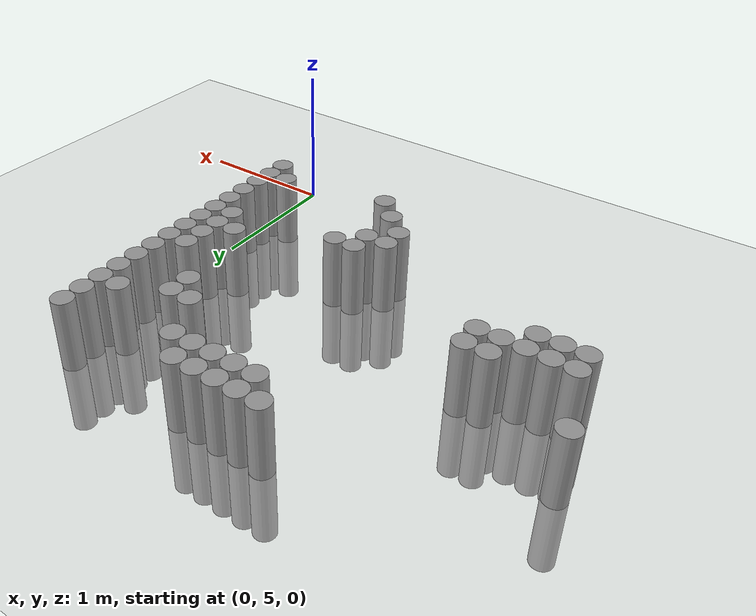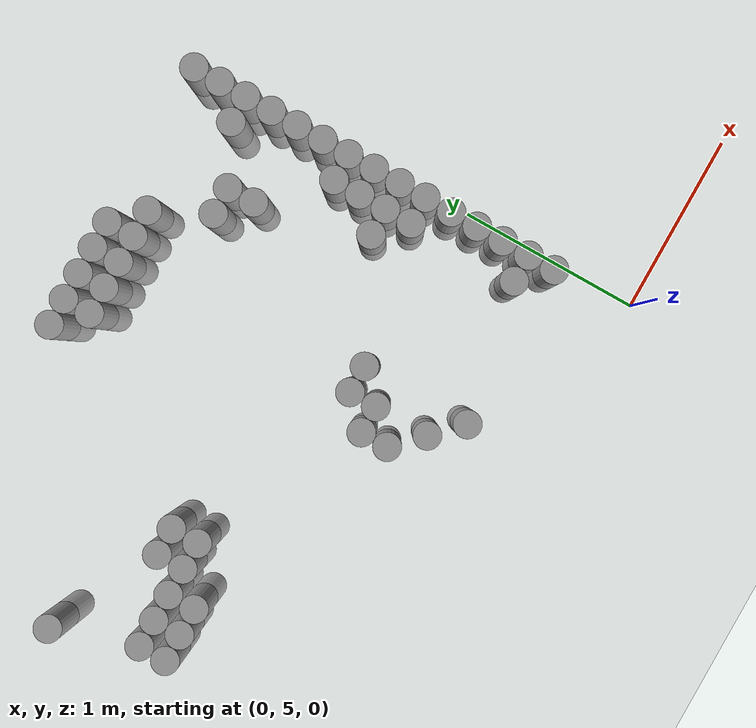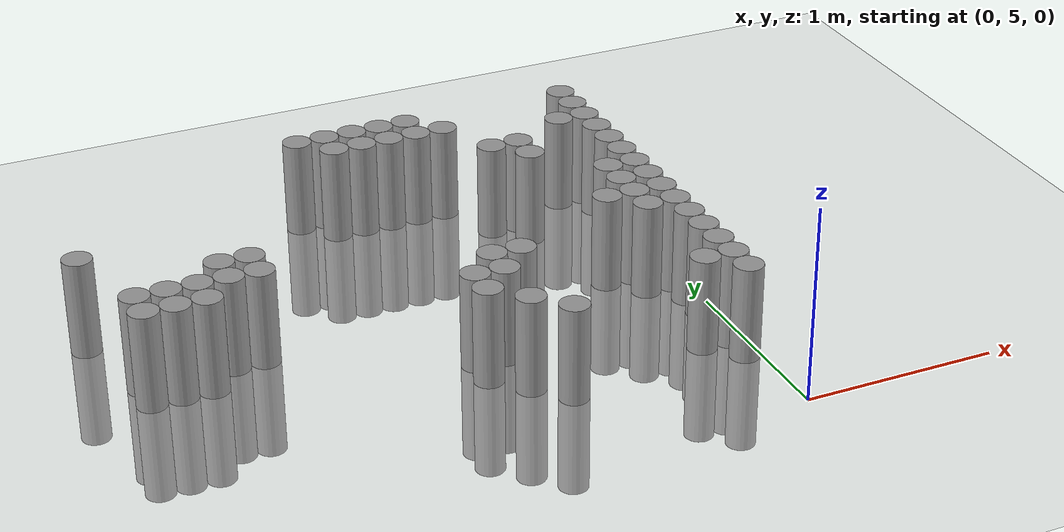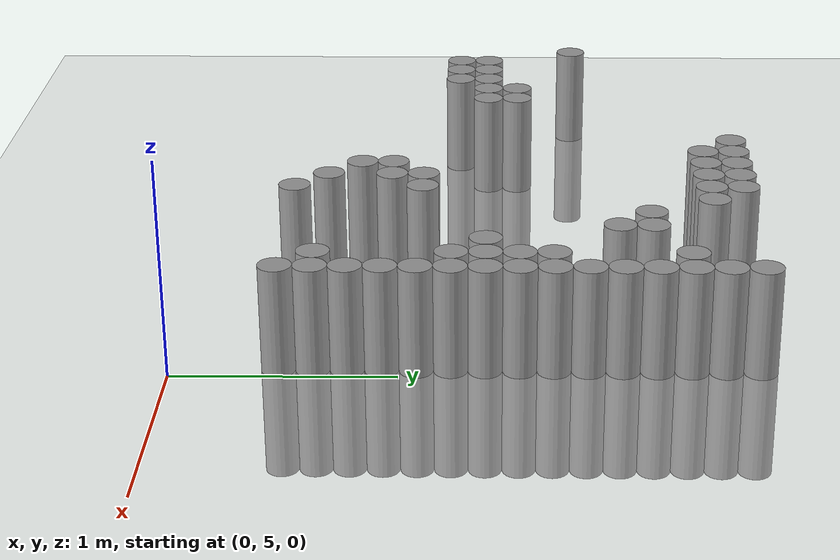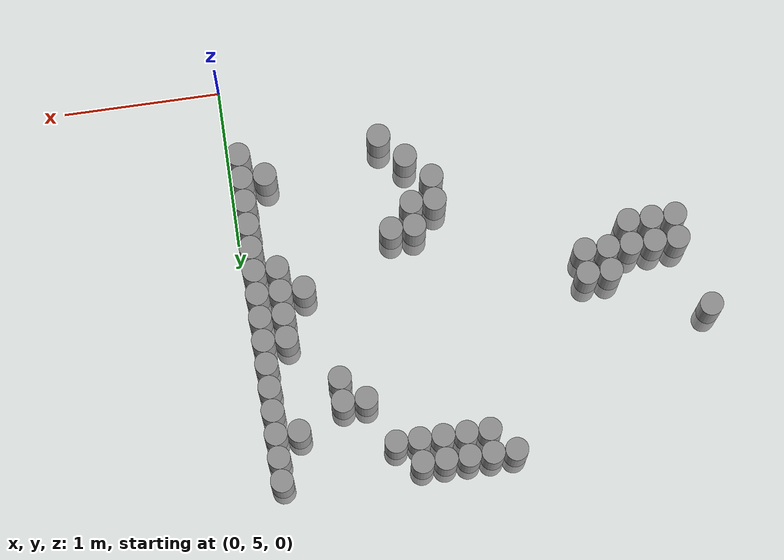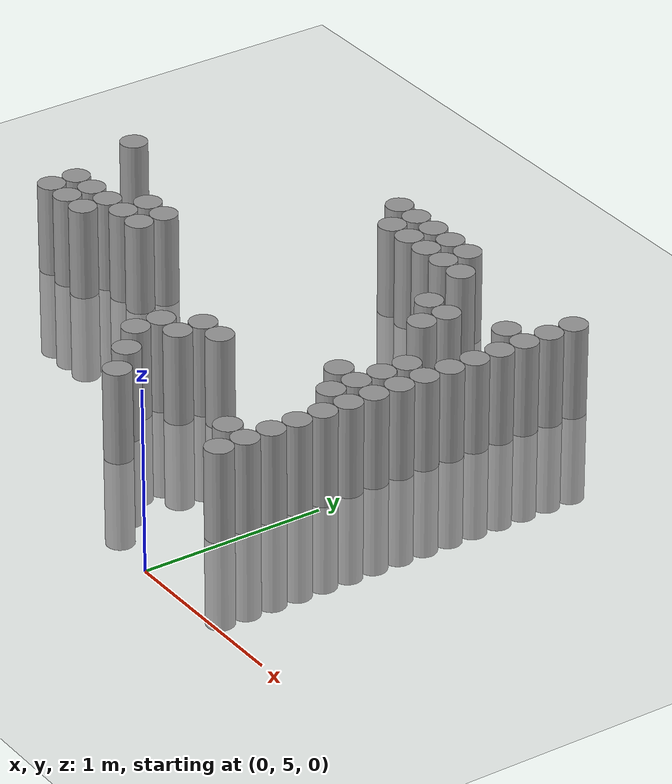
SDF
<sdf version="1.6">
 <world name="default">
  <model name="ground_plane">
   <static>1</static>
   <link name="link">
    <collision name="collision">
     <geometry><plane><normal>0 0 1</normal><size>100 100</size></plane></geometry>
     <surface><friction><ode><mu>100</mu><mu2>50</mu2></ode></friction></surface>
    </collision>
    <visual name="visual">
     <cast_shadows>0</cast_shadows>
     <geometry><plane><normal>0 0 1</normal><size>100 100</size></plane></geometry>
     <material>
      <script><uri>file://media/materials/scripts/gazebo.material</uri><name>Gazebo/Grey</name></script>
     </material>
    </visual>
   </link>
  </model>
  <model name="unit_cylinder_152">
   <pose>-2.925000 6.825000 0.000000 0.000000 0.000000 0.000000</pose>
   <link name="link">
    <inertial>
     <mass>1</mass>
     <inertia><ixx>0.145833</ixx><ixy>0</ixy><ixz>0</ixz><iyy>0.145833</iyy><iyz>0</iyz><izz>0.125</izz></inertia>
    </inertial>
    <collision name="collision">
     <geometry><cylinder><radius>0.075000</radius><length>1</length></cylinder></geometry>
    </collision>
    <visual name="visual">
     <geometry><cylinder><radius>0.075000</radius><length>1</length></cylinder></geometry>
     <material>
      <script><name>Gazebo/Grey</name><uri>file://media/materials/scripts/gazebo.material</uri></script>
     </material>
    </visual>
   </link>
  </model>
  <model name="unit_cylinder_156">
   <pose>-2.775000 6.225000 0.000000 0.000000 0.000000 0.000000</pose>
   <link name="link">
    <inertial>
     <mass>1</mass>
     <inertia><ixx>0.145833</ixx><ixy>0</ixy><ixz>0</ixz><iyy>0.145833</iyy><iyz>0</iyz><izz>0.125</izz></inertia>
    </inertial>
    <collision name="collision">
     <geometry><cylinder><radius>0.075000</radius><length>1</length></cylinder></geometry>
    </collision>
    <visual name="visual">
     <geometry><cylinder><radius>0.075000</radius><length>1</length></cylinder></geometry>
     <material>
      <script><name>Gazebo/Grey</name><uri>file://media/materials/scripts/gazebo.material</uri></script>
     </material>
    </visual>
   </link>
  </model>
  <model name="unit_cylinder_157">
   <pose>-2.775000 6.375000 0.000000 0.000000 0.000000 0.000000</pose>
   <link name="link">
    <inertial>
     <mass>1</mass>
     <inertia><ixx>0.145833</ixx><ixy>0</ixy><ixz>0</ixz><iyy>0.145833</iyy><iyz>0</iyz><izz>0.125</izz></inertia>
    </inertial>
    <collision name="collision">
     <geometry><cylinder><radius>0.075000</radius><length>1</length></cylinder></geometry>
    </collision>
    <visual name="visual">
     <geometry><cylinder><radius>0.075000</radius><length>1</length></cylinder></geometry>
     <material>
      <script><name>Gazebo/Grey</name><uri>file://media/materials/scripts/gazebo.material</uri></script>
     </material>
    </visual>
   </link>
  </model>
  <model name="unit_cylinder_164">
   <pose>-2.625000 6.225000 0.000000 0.000000 0.000000 0.000000</pose>
   <link name="link">
    <inertial>
     <mass>1</mass>
     <inertia><ixx>0.145833</ixx><ixy>0</ixy><ixz>0</ixz><iyy>0.145833</iyy><iyz>0</iyz><izz>0.125</izz></inertia>
    </inertial>
    <collision name="collision">
     <geometry><cylinder><radius>0.075000</radius><length>1</length></cylinder></geometry>
    </collision>
    <visual name="visual">
     <geometry><cylinder><radius>0.075000</radius><length>1</length></cylinder></geometry>
     <material>
      <script><name>Gazebo/Grey</name><uri>file://media/materials/scripts/gazebo.material</uri></script>
     </material>
    </visual>
   </link>
  </model>
  <model name="unit_cylinder_165">
   <pose>-2.625000 6.375000 0.000000 0.000000 0.000000 0.000000</pose>
   <link name="link">
    <inertial>
     <mass>1</mass>
     <inertia><ixx>0.145833</ixx><ixy>0</ixy><ixz>0</ixz><iyy>0.145833</iyy><iyz>0</iyz><izz>0.125</izz></inertia>
    </inertial>
    <collision name="collision">
     <geometry><cylinder><radius>0.075000</radius><length>1</length></cylinder></geometry>
    </collision>
    <visual name="visual">
     <geometry><cylinder><radius>0.075000</radius><length>1</length></cylinder></geometry>
     <material>
      <script><name>Gazebo/Grey</name><uri>file://media/materials/scripts/gazebo.material</uri></script>
     </material>
    </visual>
   </link>
  </model>
  <model name="unit_cylinder_171">
   <pose>-2.475000 6.225000 0.000000 0.000000 0.000000 0.000000</pose>
   <link name="link">
    <inertial>
     <mass>1</mass>
     <inertia><ixx>0.145833</ixx><ixy>0</ixy><ixz>0</ixz><iyy>0.145833</iyy><iyz>0</iyz><izz>0.125</izz></inertia>
    </inertial>
    <collision name="collision">
     <geometry><cylinder><radius>0.075000</radius><length>1</length></cylinder></geometry>
    </collision>
    <visual name="visual">
     <geometry><cylinder><radius>0.075000</radius><length>1</length></cylinder></geometry>
     <material>
      <script><name>Gazebo/Grey</name><uri>file://media/materials/scripts/gazebo.material</uri></script>
     </material>
    </visual>
   </link>
  </model>
  <model name="unit_cylinder_172">
   <pose>-2.475000 6.375000 0.000000 0.000000 0.000000 0.000000</pose>
   <link name="link">
    <inertial>
     <mass>1</mass>
     <inertia><ixx>0.145833</ixx><ixy>0</ixy><ixz>0</ixz><iyy>0.145833</iyy><iyz>0</iyz><izz>0.125</izz></inertia>
    </inertial>
    <collision name="collision">
     <geometry><cylinder><radius>0.075000</radius><length>1</length></cylinder></geometry>
    </collision>
    <visual name="visual">
     <geometry><cylinder><radius>0.075000</radius><length>1</length></cylinder></geometry>
     <material>
      <script><name>Gazebo/Grey</name><uri>file://media/materials/scripts/gazebo.material</uri></script>
     </material>
    </visual>
   </link>
  </model>
  <model name="unit_cylinder_175">
   <pose>-2.325000 6.375000 0.000000 0.000000 0.000000 0.000000</pose>
   <link name="link">
    <inertial>
     <mass>1</mass>
     <inertia><ixx>0.145833</ixx><ixy>0</ixy><ixz>0</ixz><iyy>0.145833</iyy><iyz>0</iyz><izz>0.125</izz></inertia>
    </inertial>
    <collision name="collision">
     <geometry><cylinder><radius>0.075000</radius><length>1</length></cylinder></geometry>
    </collision>
    <visual name="visual">
     <geometry><cylinder><radius>0.075000</radius><length>1</length></cylinder></geometry>
     <material>
      <script><name>Gazebo/Grey</name><uri>file://media/materials/scripts/gazebo.material</uri></script>
     </material>
    </visual>
   </link>
  </model>
  <model name="unit_cylinder_176">
   <pose>-2.325000 6.525000 0.000000 0.000000 0.000000 0.000000</pose>
   <link name="link">
    <inertial>
     <mass>1</mass>
     <inertia><ixx>0.145833</ixx><ixy>0</ixy><ixz>0</ixz><iyy>0.145833</iyy><iyz>0</iyz><izz>0.125</izz></inertia>
    </inertial>
    <collision name="collision">
     <geometry><cylinder><radius>0.075000</radius><length>1</length></cylinder></geometry>
    </collision>
    <visual name="visual">
     <geometry><cylinder><radius>0.075000</radius><length>1</length></cylinder></geometry>
     <material>
      <script><name>Gazebo/Grey</name><uri>file://media/materials/scripts/gazebo.material</uri></script>
     </material>
    </visual>
   </link>
  </model>
  <model name="unit_cylinder_177">
   <pose>-2.175000 6.375000 0.000000 0.000000 0.000000 0.000000</pose>
   <link name="link">
    <inertial>
     <mass>1</mass>
     <inertia><ixx>0.145833</ixx><ixy>0</ixy><ixz>0</ixz><iyy>0.145833</iyy><iyz>0</iyz><izz>0.125</izz></inertia>
    </inertial>
    <collision name="collision">
     <geometry><cylinder><radius>0.075000</radius><length>1</length></cylinder></geometry>
    </collision>
    <visual name="visual">
     <geometry><cylinder><radius>0.075000</radius><length>1</length></cylinder></geometry>
     <material>
      <script><name>Gazebo/Grey</name><uri>file://media/materials/scripts/gazebo.material</uri></script>
     </material>
    </visual>
   </link>
  </model>
  <model name="unit_cylinder_178">
   <pose>-2.175000 6.525000 0.000000 0.000000 0.000000 0.000000</pose>
   <link name="link">
    <inertial>
     <mass>1</mass>
     <inertia><ixx>0.145833</ixx><ixy>0</ixy><ixz>0</ixz><iyy>0.145833</iyy><iyz>0</iyz><izz>0.125</izz></inertia>
    </inertial>
    <collision name="collision">
     <geometry><cylinder><radius>0.075000</radius><length>1</length></cylinder></geometry>
    </collision>
    <visual name="visual">
     <geometry><cylinder><radius>0.075000</radius><length>1</length></cylinder></geometry>
     <material>
      <script><name>Gazebo/Grey</name><uri>file://media/materials/scripts/gazebo.material</uri></script>
     </material>
    </visual>
   </link>
  </model>
  <model name="unit_cylinder_186">
   <pose>-1.575000 7.575000 0.000000 0.000000 0.000000 0.000000</pose>
   <link name="link">
    <inertial>
     <mass>1</mass>
     <inertia><ixx>0.145833</ixx><ixy>0</ixy><ixz>0</ixz><iyy>0.145833</iyy><iyz>0</iyz><izz>0.125</izz></inertia>
    </inertial>
    <collision name="collision">
     <geometry><cylinder><radius>0.075000</radius><length>1</length></cylinder></geometry>
    </collision>
    <visual name="visual">
     <geometry><cylinder><radius>0.075000</radius><length>1</length></cylinder></geometry>
     <material>
      <script><name>Gazebo/Grey</name><uri>file://media/materials/scripts/gazebo.material</uri></script>
     </material>
    </visual>
   </link>
  </model>
  <model name="unit_cylinder_191">
   <pose>-1.425000 7.425000 0.000000 0.000000 0.000000 0.000000</pose>
   <link name="link">
    <inertial>
     <mass>1</mass>
     <inertia><ixx>0.145833</ixx><ixy>0</ixy><ixz>0</ixz><iyy>0.145833</iyy><iyz>0</iyz><izz>0.125</izz></inertia>
    </inertial>
    <collision name="collision">
     <geometry><cylinder><radius>0.075000</radius><length>1</length></cylinder></geometry>
    </collision>
    <visual name="visual">
     <geometry><cylinder><radius>0.075000</radius><length>1</length></cylinder></geometry>
     <material>
      <script><name>Gazebo/Grey</name><uri>file://media/materials/scripts/gazebo.material</uri></script>
     </material>
    </visual>
   </link>
  </model>
  <model name="unit_cylinder_192">
   <pose>-1.425000 7.575000 0.000000 0.000000 0.000000 0.000000</pose>
   <link name="link">
    <inertial>
     <mass>1</mass>
     <inertia><ixx>0.145833</ixx><ixy>0</ixy><ixz>0</ixz><iyy>0.145833</iyy><iyz>0</iyz><izz>0.125</izz></inertia>
    </inertial>
    <collision name="collision">
     <geometry><cylinder><radius>0.075000</radius><length>1</length></cylinder></geometry>
    </collision>
    <visual name="visual">
     <geometry><cylinder><radius>0.075000</radius><length>1</length></cylinder></geometry>
     <material>
      <script><name>Gazebo/Grey</name><uri>file://media/materials/scripts/gazebo.material</uri></script>
     </material>
    </visual>
   </link>
  </model>
  <model name="unit_cylinder_194">
   <pose>-1.275000 5.775000 0.000000 0.000000 0.000000 0.000000</pose>
   <link name="link">
    <inertial>
     <mass>1</mass>
     <inertia><ixx>0.145833</ixx><ixy>0</ixy><ixz>0</ixz><iyy>0.145833</iyy><iyz>0</iyz><izz>0.125</izz></inertia>
    </inertial>
    <collision name="collision">
     <geometry><cylinder><radius>0.075000</radius><length>1</length></cylinder></geometry>
    </collision>
    <visual name="visual">
     <geometry><cylinder><radius>0.075000</radius><length>1</length></cylinder></geometry>
     <material>
      <script><name>Gazebo/Grey</name><uri>file://media/materials/scripts/gazebo.material</uri></script>
     </material>
    </visual>
   </link>
  </model>
  <model name="unit_cylinder_195">
   <pose>-1.275000 5.925000 0.000000 0.000000 0.000000 0.000000</pose>
   <link name="link">
    <inertial>
     <mass>1</mass>
     <inertia><ixx>0.145833</ixx><ixy>0</ixy><ixz>0</ixz><iyy>0.145833</iyy><iyz>0</iyz><izz>0.125</izz></inertia>
    </inertial>
    <collision name="collision">
     <geometry><cylinder><radius>0.075000</radius><length>1</length></cylinder></geometry>
    </collision>
    <visual name="visual">
     <geometry><cylinder><radius>0.075000</radius><length>1</length></cylinder></geometry>
     <material>
      <script><name>Gazebo/Grey</name><uri>file://media/materials/scripts/gazebo.material</uri></script>
     </material>
    </visual>
   </link>
  </model>
  <model name="unit_cylinder_196">
   <pose>-1.275000 7.425000 0.000000 0.000000 0.000000 0.000000</pose>
   <link name="link">
    <inertial>
     <mass>1</mass>
     <inertia><ixx>0.145833</ixx><ixy>0</ixy><ixz>0</ixz><iyy>0.145833</iyy><iyz>0</iyz><izz>0.125</izz></inertia>
    </inertial>
    <collision name="collision">
     <geometry><cylinder><radius>0.075000</radius><length>1</length></cylinder></geometry>
    </collision>
    <visual name="visual">
     <geometry><cylinder><radius>0.075000</radius><length>1</length></cylinder></geometry>
     <material>
      <script><name>Gazebo/Grey</name><uri>file://media/materials/scripts/gazebo.material</uri></script>
     </material>
    </visual>
   </link>
  </model>
  <model name="unit_cylinder_197">
   <pose>-1.275000 7.575000 0.000000 0.000000 0.000000 0.000000</pose>
   <link name="link">
    <inertial>
     <mass>1</mass>
     <inertia><ixx>0.145833</ixx><ixy>0</ixy><ixz>0</ixz><iyy>0.145833</iyy><iyz>0</iyz><izz>0.125</izz></inertia>
    </inertial>
    <collision name="collision">
     <geometry><cylinder><radius>0.075000</radius><length>1</length></cylinder></geometry>
    </collision>
    <visual name="visual">
     <geometry><cylinder><radius>0.075000</radius><length>1</length></cylinder></geometry>
     <material>
      <script><name>Gazebo/Grey</name><uri>file://media/materials/scripts/gazebo.material</uri></script>
     </material>
    </visual>
   </link>
  </model>
  <model name="unit_cylinder_201">
   <pose>-1.125000 5.625000 0.000000 0.000000 0.000000 0.000000</pose>
   <link name="link">
    <inertial>
     <mass>1</mass>
     <inertia><ixx>0.145833</ixx><ixy>0</ixy><ixz>0</ixz><iyy>0.145833</iyy><iyz>0</iyz><izz>0.125</izz></inertia>
    </inertial>
    <collision name="collision">
     <geometry><cylinder><radius>0.075000</radius><length>1</length></cylinder></geometry>
    </collision>
    <visual name="visual">
     <geometry><cylinder><radius>0.075000</radius><length>1</length></cylinder></geometry>
     <material>
      <script><name>Gazebo/Grey</name><uri>file://media/materials/scripts/gazebo.material</uri></script>
     </material>
    </visual>
   </link>
  </model>
  <model name="unit_cylinder_202">
   <pose>-1.125000 5.925000 0.000000 0.000000 0.000000 0.000000</pose>
   <link name="link">
    <inertial>
     <mass>1</mass>
     <inertia><ixx>0.145833</ixx><ixy>0</ixy><ixz>0</ixz><iyy>0.145833</iyy><iyz>0</iyz><izz>0.125</izz></inertia>
    </inertial>
    <collision name="collision">
     <geometry><cylinder><radius>0.075000</radius><length>1</length></cylinder></geometry>
    </collision>
    <visual name="visual">
     <geometry><cylinder><radius>0.075000</radius><length>1</length></cylinder></geometry>
     <material>
      <script><name>Gazebo/Grey</name><uri>file://media/materials/scripts/gazebo.material</uri></script>
     </material>
    </visual>
   </link>
  </model>
  <model name="unit_cylinder_203">
   <pose>-1.125000 6.075000 0.000000 0.000000 0.000000 0.000000</pose>
   <link name="link">
    <inertial>
     <mass>1</mass>
     <inertia><ixx>0.145833</ixx><ixy>0</ixy><ixz>0</ixz><iyy>0.145833</iyy><iyz>0</iyz><izz>0.125</izz></inertia>
    </inertial>
    <collision name="collision">
     <geometry><cylinder><radius>0.075000</radius><length>1</length></cylinder></geometry>
    </collision>
    <visual name="visual">
     <geometry><cylinder><radius>0.075000</radius><length>1</length></cylinder></geometry>
     <material>
      <script><name>Gazebo/Grey</name><uri>file://media/materials/scripts/gazebo.material</uri></script>
     </material>
    </visual>
   </link>
  </model>
  <model name="unit_cylinder_204">
   <pose>-1.125000 7.425000 0.000000 0.000000 0.000000 0.000000</pose>
   <link name="link">
    <inertial>
     <mass>1</mass>
     <inertia><ixx>0.145833</ixx><ixy>0</ixy><ixz>0</ixz><iyy>0.145833</iyy><iyz>0</iyz><izz>0.125</izz></inertia>
    </inertial>
    <collision name="collision">
     <geometry><cylinder><radius>0.075000</radius><length>1</length></cylinder></geometry>
    </collision>
    <visual name="visual">
     <geometry><cylinder><radius>0.075000</radius><length>1</length></cylinder></geometry>
     <material>
      <script><name>Gazebo/Grey</name><uri>file://media/materials/scripts/gazebo.material</uri></script>
     </material>
    </visual>
   </link>
  </model>
  <model name="unit_cylinder_205">
   <pose>-1.125000 7.575000 0.000000 0.000000 0.000000 0.000000</pose>
   <link name="link">
    <inertial>
     <mass>1</mass>
     <inertia><ixx>0.145833</ixx><ixy>0</ixy><ixz>0</ixz><iyy>0.145833</iyy><iyz>0</iyz><izz>0.125</izz></inertia>
    </inertial>
    <collision name="collision">
     <geometry><cylinder><radius>0.075000</radius><length>1</length></cylinder></geometry>
    </collision>
    <visual name="visual">
     <geometry><cylinder><radius>0.075000</radius><length>1</length></cylinder></geometry>
     <material>
      <script><name>Gazebo/Grey</name><uri>file://media/materials/scripts/gazebo.material</uri></script>
     </material>
    </visual>
   </link>
  </model>
  <model name="unit_cylinder_209">
   <pose>-0.975000 5.475000 0.000000 0.000000 0.000000 0.000000</pose>
   <link name="link">
    <inertial>
     <mass>1</mass>
     <inertia><ixx>0.145833</ixx><ixy>0</ixy><ixz>0</ixz><iyy>0.145833</iyy><iyz>0</iyz><izz>0.125</izz></inertia>
    </inertial>
    <collision name="collision">
     <geometry><cylinder><radius>0.075000</radius><length>1</length></cylinder></geometry>
    </collision>
    <visual name="visual">
     <geometry><cylinder><radius>0.075000</radius><length>1</length></cylinder></geometry>
     <material>
      <script><name>Gazebo/Grey</name><uri>file://media/materials/scripts/gazebo.material</uri></script>
     </material>
    </visual>
   </link>
  </model>
  <model name="unit_cylinder_210">
   <pose>-0.975000 6.075000 0.000000 0.000000 0.000000 0.000000</pose>
   <link name="link">
    <inertial>
     <mass>1</mass>
     <inertia><ixx>0.145833</ixx><ixy>0</ixy><ixz>0</ixz><iyy>0.145833</iyy><iyz>0</iyz><izz>0.125</izz></inertia>
    </inertial>
    <collision name="collision">
     <geometry><cylinder><radius>0.075000</radius><length>1</length></cylinder></geometry>
    </collision>
    <visual name="visual">
     <geometry><cylinder><radius>0.075000</radius><length>1</length></cylinder></geometry>
     <material>
      <script><name>Gazebo/Grey</name><uri>file://media/materials/scripts/gazebo.material</uri></script>
     </material>
    </visual>
   </link>
  </model>
  <model name="unit_cylinder_211">
   <pose>-0.975000 7.425000 0.000000 0.000000 0.000000 0.000000</pose>
   <link name="link">
    <inertial>
     <mass>1</mass>
     <inertia><ixx>0.145833</ixx><ixy>0</ixy><ixz>0</ixz><iyy>0.145833</iyy><iyz>0</iyz><izz>0.125</izz></inertia>
    </inertial>
    <collision name="collision">
     <geometry><cylinder><radius>0.075000</radius><length>1</length></cylinder></geometry>
    </collision>
    <visual name="visual">
     <geometry><cylinder><radius>0.075000</radius><length>1</length></cylinder></geometry>
     <material>
      <script><name>Gazebo/Grey</name><uri>file://media/materials/scripts/gazebo.material</uri></script>
     </material>
    </visual>
   </link>
  </model>
  <model name="unit_cylinder_212">
   <pose>-0.975000 7.575000 0.000000 0.000000 0.000000 0.000000</pose>
   <link name="link">
    <inertial>
     <mass>1</mass>
     <inertia><ixx>0.145833</ixx><ixy>0</ixy><ixz>0</ixz><iyy>0.145833</iyy><iyz>0</iyz><izz>0.125</izz></inertia>
    </inertial>
    <collision name="collision">
     <geometry><cylinder><radius>0.075000</radius><length>1</length></cylinder></geometry>
    </collision>
    <visual name="visual">
     <geometry><cylinder><radius>0.075000</radius><length>1</length></cylinder></geometry>
     <material>
      <script><name>Gazebo/Grey</name><uri>file://media/materials/scripts/gazebo.material</uri></script>
     </material>
    </visual>
   </link>
  </model>
  <model name="unit_cylinder_216">
   <pose>-0.825000 7.425000 0.000000 0.000000 0.000000 0.000000</pose>
   <link name="link">
    <inertial>
     <mass>1</mass>
     <inertia><ixx>0.145833</ixx><ixy>0</ixy><ixz>0</ixz><iyy>0.145833</iyy><iyz>0</iyz><izz>0.125</izz></inertia>
    </inertial>
    <collision name="collision">
     <geometry><cylinder><radius>0.075000</radius><length>1</length></cylinder></geometry>
    </collision>
    <visual name="visual">
     <geometry><cylinder><radius>0.075000</radius><length>1</length></cylinder></geometry>
     <material>
      <script><name>Gazebo/Grey</name><uri>file://media/materials/scripts/gazebo.material</uri></script>
     </material>
    </visual>
   </link>
  </model>
  <model name="unit_cylinder_220">
   <pose>-0.675000 7.125000 0.000000 0.000000 0.000000 0.000000</pose>
   <link name="link">
    <inertial>
     <mass>1</mass>
     <inertia><ixx>0.145833</ixx><ixy>0</ixy><ixz>0</ixz><iyy>0.145833</iyy><iyz>0</iyz><izz>0.125</izz></inertia>
    </inertial>
    <collision name="collision">
     <geometry><cylinder><radius>0.075000</radius><length>1</length></cylinder></geometry>
    </collision>
    <visual name="visual">
     <geometry><cylinder><radius>0.075000</radius><length>1</length></cylinder></geometry>
     <material>
      <script><name>Gazebo/Grey</name><uri>file://media/materials/scripts/gazebo.material</uri></script>
     </material>
    </visual>
   </link>
  </model>
  <model name="unit_cylinder_223">
   <pose>-0.525000 6.975000 0.000000 0.000000 0.000000 0.000000</pose>
   <link name="link">
    <inertial>
     <mass>1</mass>
     <inertia><ixx>0.145833</ixx><ixy>0</ixy><ixz>0</ixz><iyy>0.145833</iyy><iyz>0</iyz><izz>0.125</izz></inertia>
    </inertial>
    <collision name="collision">
     <geometry><cylinder><radius>0.075000</radius><length>1</length></cylinder></geometry>
    </collision>
    <visual name="visual">
     <geometry><cylinder><radius>0.075000</radius><length>1</length></cylinder></geometry>
     <material>
      <script><name>Gazebo/Grey</name><uri>file://media/materials/scripts/gazebo.material</uri></script>
     </material>
    </visual>
   </link>
  </model>
  <model name="unit_cylinder_224">
   <pose>-0.525000 7.125000 0.000000 0.000000 0.000000 0.000000</pose>
   <link name="link">
    <inertial>
     <mass>1</mass>
     <inertia><ixx>0.145833</ixx><ixy>0</ixy><ixz>0</ixz><iyy>0.145833</iyy><iyz>0</iyz><izz>0.125</izz></inertia>
    </inertial>
    <collision name="collision">
     <geometry><cylinder><radius>0.075000</radius><length>1</length></cylinder></geometry>
    </collision>
    <visual name="visual">
     <geometry><cylinder><radius>0.075000</radius><length>1</length></cylinder></geometry>
     <material>
      <script><name>Gazebo/Grey</name><uri>file://media/materials/scripts/gazebo.material</uri></script>
     </material>
    </visual>
   </link>
  </model>
  <model name="unit_cylinder_227">
   <pose>-0.375000 6.375000 0.000000 0.000000 0.000000 0.000000</pose>
   <link name="link">
    <inertial>
     <mass>1</mass>
     <inertia><ixx>0.145833</ixx><ixy>0</ixy><ixz>0</ixz><iyy>0.145833</iyy><iyz>0</iyz><izz>0.125</izz></inertia>
    </inertial>
    <collision name="collision">
     <geometry><cylinder><radius>0.075000</radius><length>1</length></cylinder></geometry>
    </collision>
    <visual name="visual">
     <geometry><cylinder><radius>0.075000</radius><length>1</length></cylinder></geometry>
     <material>
      <script><name>Gazebo/Grey</name><uri>file://media/materials/scripts/gazebo.material</uri></script>
     </material>
    </visual>
   </link>
  </model>
  <model name="unit_cylinder_230">
   <pose>-0.225000 5.625000 0.000000 0.000000 0.000000 0.000000</pose>
   <link name="link">
    <inertial>
     <mass>1</mass>
     <inertia><ixx>0.145833</ixx><ixy>0</ixy><ixz>0</ixz><iyy>0.145833</iyy><iyz>0</iyz><izz>0.125</izz></inertia>
    </inertial>
    <collision name="collision">
     <geometry><cylinder><radius>0.075000</radius><length>1</length></cylinder></geometry>
    </collision>
    <visual name="visual">
     <geometry><cylinder><radius>0.075000</radius><length>1</length></cylinder></geometry>
     <material>
      <script><name>Gazebo/Grey</name><uri>file://media/materials/scripts/gazebo.material</uri></script>
     </material>
    </visual>
   </link>
  </model>
  <model name="unit_cylinder_231">
   <pose>-0.225000 6.225000 0.000000 0.000000 0.000000 0.000000</pose>
   <link name="link">
    <inertial>
     <mass>1</mass>
     <inertia><ixx>0.145833</ixx><ixy>0</ixy><ixz>0</ixz><iyy>0.145833</iyy><iyz>0</iyz><izz>0.125</izz></inertia>
    </inertial>
    <collision name="collision">
     <geometry><cylinder><radius>0.075000</radius><length>1</length></cylinder></geometry>
    </collision>
    <visual name="visual">
     <geometry><cylinder><radius>0.075000</radius><length>1</length></cylinder></geometry>
     <material>
      <script><name>Gazebo/Grey</name><uri>file://media/materials/scripts/gazebo.material</uri></script>
     </material>
    </visual>
   </link>
  </model>
  <model name="unit_cylinder_232">
   <pose>-0.225000 6.375000 0.000000 0.000000 0.000000 0.000000</pose>
   <link name="link">
    <inertial>
     <mass>1</mass>
     <inertia><ixx>0.145833</ixx><ixy>0</ixy><ixz>0</ixz><iyy>0.145833</iyy><iyz>0</iyz><izz>0.125</izz></inertia>
    </inertial>
    <collision name="collision">
     <geometry><cylinder><radius>0.075000</radius><length>1</length></cylinder></geometry>
    </collision>
    <visual name="visual">
     <geometry><cylinder><radius>0.075000</radius><length>1</length></cylinder></geometry>
     <material>
      <script><name>Gazebo/Grey</name><uri>file://media/materials/scripts/gazebo.material</uri></script>
     </material>
    </visual>
   </link>
  </model>
  <model name="unit_cylinder_233">
   <pose>-0.225000 6.525000 0.000000 0.000000 0.000000 0.000000</pose>
   <link name="link">
    <inertial>
     <mass>1</mass>
     <inertia><ixx>0.145833</ixx><ixy>0</ixy><ixz>0</ixz><iyy>0.145833</iyy><iyz>0</iyz><izz>0.125</izz></inertia>
    </inertial>
    <collision name="collision">
     <geometry><cylinder><radius>0.075000</radius><length>1</length></cylinder></geometry>
    </collision>
    <visual name="visual">
     <geometry><cylinder><radius>0.075000</radius><length>1</length></cylinder></geometry>
     <material>
      <script><name>Gazebo/Grey</name><uri>file://media/materials/scripts/gazebo.material</uri></script>
     </material>
    </visual>
   </link>
  </model>
  <model name="unit_cylinder_234">
   <pose>-0.225000 6.675000 0.000000 0.000000 0.000000 0.000000</pose>
   <link name="link">
    <inertial>
     <mass>1</mass>
     <inertia><ixx>0.145833</ixx><ixy>0</ixy><ixz>0</ixz><iyy>0.145833</iyy><iyz>0</iyz><izz>0.125</izz></inertia>
    </inertial>
    <collision name="collision">
     <geometry><cylinder><radius>0.075000</radius><length>1</length></cylinder></geometry>
    </collision>
    <visual name="visual">
     <geometry><cylinder><radius>0.075000</radius><length>1</length></cylinder></geometry>
     <material>
      <script><name>Gazebo/Grey</name><uri>file://media/materials/scripts/gazebo.material</uri></script>
     </material>
    </visual>
   </link>
  </model>
  <model name="unit_cylinder_235">
   <pose>-0.225000 7.275000 0.000000 0.000000 0.000000 0.000000</pose>
   <link name="link">
    <inertial>
     <mass>1</mass>
     <inertia><ixx>0.145833</ixx><ixy>0</ixy><ixz>0</ixz><iyy>0.145833</iyy><iyz>0</iyz><izz>0.125</izz></inertia>
    </inertial>
    <collision name="collision">
     <geometry><cylinder><radius>0.075000</radius><length>1</length></cylinder></geometry>
    </collision>
    <visual name="visual">
     <geometry><cylinder><radius>0.075000</radius><length>1</length></cylinder></geometry>
     <material>
      <script><name>Gazebo/Grey</name><uri>file://media/materials/scripts/gazebo.material</uri></script>
     </material>
    </visual>
   </link>
  </model>
  <model name="unit_cylinder_241">
   <pose>-0.075000 5.475000 0.000000 0.000000 0.000000 0.000000</pose>
   <link name="link">
    <inertial>
     <mass>1</mass>
     <inertia><ixx>0.145833</ixx><ixy>0</ixy><ixz>0</ixz><iyy>0.145833</iyy><iyz>0</iyz><izz>0.125</izz></inertia>
    </inertial>
    <collision name="collision">
     <geometry><cylinder><radius>0.075000</radius><length>1</length></cylinder></geometry>
    </collision>
    <visual name="visual">
     <geometry><cylinder><radius>0.075000</radius><length>1</length></cylinder></geometry>
     <material>
      <script><name>Gazebo/Grey</name><uri>file://media/materials/scripts/gazebo.material</uri></script>
     </material>
    </visual>
   </link>
  </model>
  <model name="unit_cylinder_242">
   <pose>-0.075000 5.625000 0.000000 0.000000 0.000000 0.000000</pose>
   <link name="link">
    <inertial>
     <mass>1</mass>
     <inertia><ixx>0.145833</ixx><ixy>0</ixy><ixz>0</ixz><iyy>0.145833</iyy><iyz>0</iyz><izz>0.125</izz></inertia>
    </inertial>
    <collision name="collision">
     <geometry><cylinder><radius>0.075000</radius><length>1</length></cylinder></geometry>
    </collision>
    <visual name="visual">
     <geometry><cylinder><radius>0.075000</radius><length>1</length></cylinder></geometry>
     <material>
      <script><name>Gazebo/Grey</name><uri>file://media/materials/scripts/gazebo.material</uri></script>
     </material>
    </visual>
   </link>
  </model>
  <model name="unit_cylinder_243">
   <pose>-0.075000 5.775000 0.000000 0.000000 0.000000 0.000000</pose>
   <link name="link">
    <inertial>
     <mass>1</mass>
     <inertia><ixx>0.145833</ixx><ixy>0</ixy><ixz>0</ixz><iyy>0.145833</iyy><iyz>0</iyz><izz>0.125</izz></inertia>
    </inertial>
    <collision name="collision">
     <geometry><cylinder><radius>0.075000</radius><length>1</length></cylinder></geometry>
    </collision>
    <visual name="visual">
     <geometry><cylinder><radius>0.075000</radius><length>1</length></cylinder></geometry>
     <material>
      <script><name>Gazebo/Grey</name><uri>file://media/materials/scripts/gazebo.material</uri></script>
     </material>
    </visual>
   </link>
  </model>
  <model name="unit_cylinder_244">
   <pose>-0.075000 5.925000 0.000000 0.000000 0.000000 0.000000</pose>
   <link name="link">
    <inertial>
     <mass>1</mass>
     <inertia><ixx>0.145833</ixx><ixy>0</ixy><ixz>0</ixz><iyy>0.145833</iyy><iyz>0</iyz><izz>0.125</izz></inertia>
    </inertial>
    <collision name="collision">
     <geometry><cylinder><radius>0.075000</radius><length>1</length></cylinder></geometry>
    </collision>
    <visual name="visual">
     <geometry><cylinder><radius>0.075000</radius><length>1</length></cylinder></geometry>
     <material>
      <script><name>Gazebo/Grey</name><uri>file://media/materials/scripts/gazebo.material</uri></script>
     </material>
    </visual>
   </link>
  </model>
  <model name="unit_cylinder_245">
   <pose>-0.075000 6.075000 0.000000 0.000000 0.000000 0.000000</pose>
   <link name="link">
    <inertial>
     <mass>1</mass>
     <inertia><ixx>0.145833</ixx><ixy>0</ixy><ixz>0</ixz><iyy>0.145833</iyy><iyz>0</iyz><izz>0.125</izz></inertia>
    </inertial>
    <collision name="collision">
     <geometry><cylinder><radius>0.075000</radius><length>1</length></cylinder></geometry>
    </collision>
    <visual name="visual">
     <geometry><cylinder><radius>0.075000</radius><length>1</length></cylinder></geometry>
     <material>
      <script><name>Gazebo/Grey</name><uri>file://media/materials/scripts/gazebo.material</uri></script>
     </material>
    </visual>
   </link>
  </model>
  <model name="unit_cylinder_246">
   <pose>-0.075000 6.225000 0.000000 0.000000 0.000000 0.000000</pose>
   <link name="link">
    <inertial>
     <mass>1</mass>
     <inertia><ixx>0.145833</ixx><ixy>0</ixy><ixz>0</ixz><iyy>0.145833</iyy><iyz>0</iyz><izz>0.125</izz></inertia>
    </inertial>
    <collision name="collision">
     <geometry><cylinder><radius>0.075000</radius><length>1</length></cylinder></geometry>
    </collision>
    <visual name="visual">
     <geometry><cylinder><radius>0.075000</radius><length>1</length></cylinder></geometry>
     <material>
      <script><name>Gazebo/Grey</name><uri>file://media/materials/scripts/gazebo.material</uri></script>
     </material>
    </visual>
   </link>
  </model>
  <model name="unit_cylinder_247">
   <pose>-0.075000 6.375000 0.000000 0.000000 0.000000 0.000000</pose>
   <link name="link">
    <inertial>
     <mass>1</mass>
     <inertia><ixx>0.145833</ixx><ixy>0</ixy><ixz>0</ixz><iyy>0.145833</iyy><iyz>0</iyz><izz>0.125</izz></inertia>
    </inertial>
    <collision name="collision">
     <geometry><cylinder><radius>0.075000</radius><length>1</length></cylinder></geometry>
    </collision>
    <visual name="visual">
     <geometry><cylinder><radius>0.075000</radius><length>1</length></cylinder></geometry>
     <material>
      <script><name>Gazebo/Grey</name><uri>file://media/materials/scripts/gazebo.material</uri></script>
     </material>
    </visual>
   </link>
  </model>
  <model name="unit_cylinder_248">
   <pose>-0.075000 6.525000 0.000000 0.000000 0.000000 0.000000</pose>
   <link name="link">
    <inertial>
     <mass>1</mass>
     <inertia><ixx>0.145833</ixx><ixy>0</ixy><ixz>0</ixz><iyy>0.145833</iyy><iyz>0</iyz><izz>0.125</izz></inertia>
    </inertial>
    <collision name="collision">
     <geometry><cylinder><radius>0.075000</radius><length>1</length></cylinder></geometry>
    </collision>
    <visual name="visual">
     <geometry><cylinder><radius>0.075000</radius><length>1</length></cylinder></geometry>
     <material>
      <script><name>Gazebo/Grey</name><uri>file://media/materials/scripts/gazebo.material</uri></script>
     </material>
    </visual>
   </link>
  </model>
  <model name="unit_cylinder_249">
   <pose>-0.075000 6.675000 0.000000 0.000000 0.000000 0.000000</pose>
   <link name="link">
    <inertial>
     <mass>1</mass>
     <inertia><ixx>0.145833</ixx><ixy>0</ixy><ixz>0</ixz><iyy>0.145833</iyy><iyz>0</iyz><izz>0.125</izz></inertia>
    </inertial>
    <collision name="collision">
     <geometry><cylinder><radius>0.075000</radius><length>1</length></cylinder></geometry>
    </collision>
    <visual name="visual">
     <geometry><cylinder><radius>0.075000</radius><length>1</length></cylinder></geometry>
     <material>
      <script><name>Gazebo/Grey</name><uri>file://media/materials/scripts/gazebo.material</uri></script>
     </material>
    </visual>
   </link>
  </model>
  <model name="unit_cylinder_250">
   <pose>-0.075000 6.825000 0.000000 0.000000 0.000000 0.000000</pose>
   <link name="link">
    <inertial>
     <mass>1</mass>
     <inertia><ixx>0.145833</ixx><ixy>0</ixy><ixz>0</ixz><iyy>0.145833</iyy><iyz>0</iyz><izz>0.125</izz></inertia>
    </inertial>
    <collision name="collision">
     <geometry><cylinder><radius>0.075000</radius><length>1</length></cylinder></geometry>
    </collision>
    <visual name="visual">
     <geometry><cylinder><radius>0.075000</radius><length>1</length></cylinder></geometry>
     <material>
      <script><name>Gazebo/Grey</name><uri>file://media/materials/scripts/gazebo.material</uri></script>
     </material>
    </visual>
   </link>
  </model>
  <model name="unit_cylinder_251">
   <pose>-0.075000 6.975000 0.000000 0.000000 0.000000 0.000000</pose>
   <link name="link">
    <inertial>
     <mass>1</mass>
     <inertia><ixx>0.145833</ixx><ixy>0</ixy><ixz>0</ixz><iyy>0.145833</iyy><iyz>0</iyz><izz>0.125</izz></inertia>
    </inertial>
    <collision name="collision">
     <geometry><cylinder><radius>0.075000</radius><length>1</length></cylinder></geometry>
    </collision>
    <visual name="visual">
     <geometry><cylinder><radius>0.075000</radius><length>1</length></cylinder></geometry>
     <material>
      <script><name>Gazebo/Grey</name><uri>file://media/materials/scripts/gazebo.material</uri></script>
     </material>
    </visual>
   </link>
  </model>
  <model name="unit_cylinder_252">
   <pose>-0.075000 7.125000 0.000000 0.000000 0.000000 0.000000</pose>
   <link name="link">
    <inertial>
     <mass>1</mass>
     <inertia><ixx>0.145833</ixx><ixy>0</ixy><ixz>0</ixz><iyy>0.145833</iyy><iyz>0</iyz><izz>0.125</izz></inertia>
    </inertial>
    <collision name="collision">
     <geometry><cylinder><radius>0.075000</radius><length>1</length></cylinder></geometry>
    </collision>
    <visual name="visual">
     <geometry><cylinder><radius>0.075000</radius><length>1</length></cylinder></geometry>
     <material>
      <script><name>Gazebo/Grey</name><uri>file://media/materials/scripts/gazebo.material</uri></script>
     </material>
    </visual>
   </link>
  </model>
  <model name="unit_cylinder_253">
   <pose>-0.075000 7.275000 0.000000 0.000000 0.000000 0.000000</pose>
   <link name="link">
    <inertial>
     <mass>1</mass>
     <inertia><ixx>0.145833</ixx><ixy>0</ixy><ixz>0</ixz><iyy>0.145833</iyy><iyz>0</iyz><izz>0.125</izz></inertia>
    </inertial>
    <collision name="collision">
     <geometry><cylinder><radius>0.075000</radius><length>1</length></cylinder></geometry>
    </collision>
    <visual name="visual">
     <geometry><cylinder><radius>0.075000</radius><length>1</length></cylinder></geometry>
     <material>
      <script><name>Gazebo/Grey</name><uri>file://media/materials/scripts/gazebo.material</uri></script>
     </material>
    </visual>
   </link>
  </model>
  <model name="unit_cylinder_254">
   <pose>-0.075000 7.425000 0.000000 0.000000 0.000000 0.000000</pose>
   <link name="link">
    <inertial>
     <mass>1</mass>
     <inertia><ixx>0.145833</ixx><ixy>0</ixy><ixz>0</ixz><iyy>0.145833</iyy><iyz>0</iyz><izz>0.125</izz></inertia>
    </inertial>
    <collision name="collision">
     <geometry><cylinder><radius>0.075000</radius><length>1</length></cylinder></geometry>
    </collision>
    <visual name="visual">
     <geometry><cylinder><radius>0.075000</radius><length>1</length></cylinder></geometry>
     <material>
      <script><name>Gazebo/Grey</name><uri>file://media/materials/scripts/gazebo.material</uri></script>
     </material>
    </visual>
   </link>
  </model>
  <model name="unit_cylinder_255">
   <pose>-0.075000 7.575000 0.000000 0.000000 0.000000 0.000000</pose>
   <link name="link">
    <inertial>
     <mass>1</mass>
     <inertia><ixx>0.145833</ixx><ixy>0</ixy><ixz>0</ixz><iyy>0.145833</iyy><iyz>0</iyz><izz>0.125</izz></inertia>
    </inertial>
    <collision name="collision">
     <geometry><cylinder><radius>0.075000</radius><length>1</length></cylinder></geometry>
    </collision>
    <visual name="visual">
     <geometry><cylinder><radius>0.075000</radius><length>1</length></cylinder></geometry>
     <material>
      <script><name>Gazebo/Grey</name><uri>file://media/materials/scripts/gazebo.material</uri></script>
     </material>
    </visual>
   </link>
  </model>
 </world>
</sdf>
